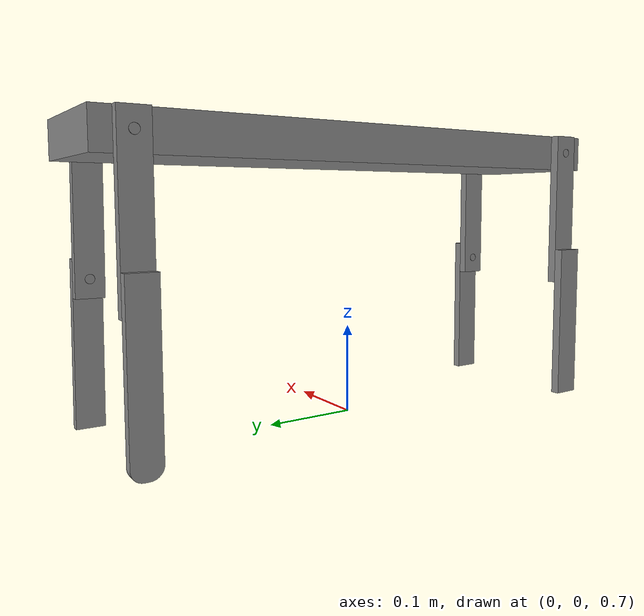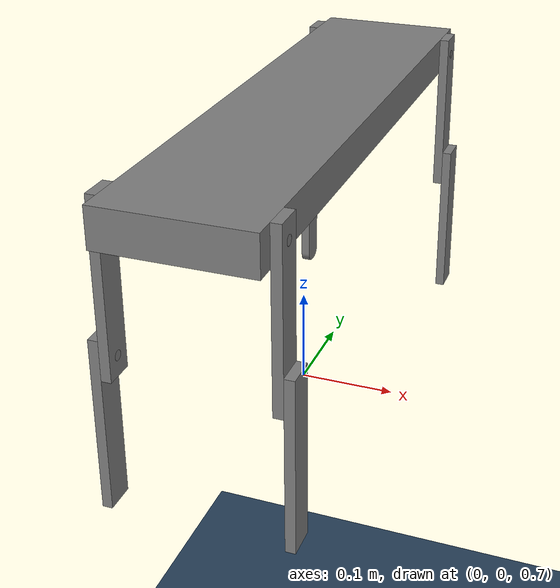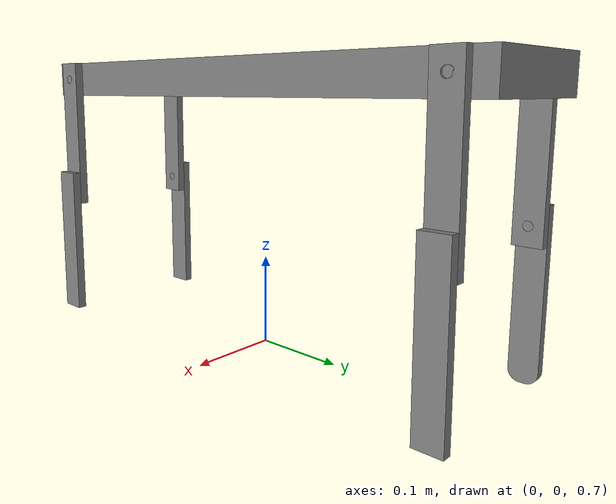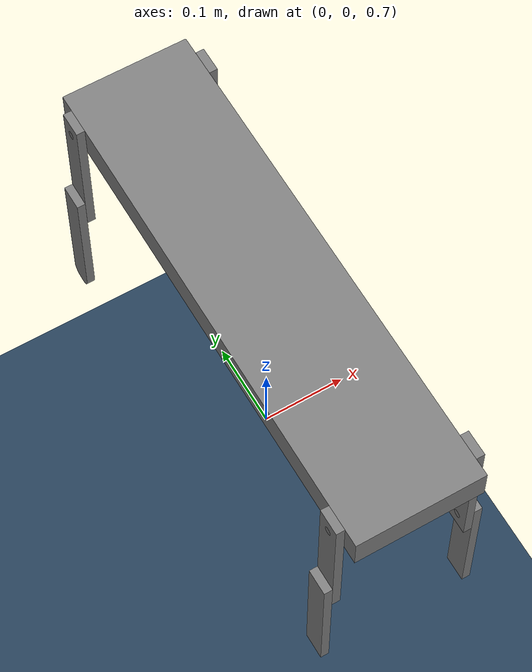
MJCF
<!-- Notes: -->
<!-- FR = Front Right, FL = Front Left, BR = Back Right, BL = Back Left -->

<mujoco model="Quadroped">
    <compiler angle="radian" />
    <asset>
        <!-- CAD Files -->
        <mesh name="Body-v1" file="meshes/Body-v1.stl" scale="0.001 0.001 0.001" />
        <mesh name="Lower-leg-1" file="meshes/Lower-leg-1.stl" scale="0.001 0.001 0.001" />
        <mesh name="Upper-leg-1" file="meshes/Upper-leg-1.stl" scale="0.001 0.001 0.001" />
        <mesh name="Upper-leg-2" file="meshes/Upper-leg-2.stl" scale="0.001 0.001 0.001" />
        <mesh name="Lower-leg-2" file="meshes/Lower-leg-2.stl" scale="0.001 0.001 0.001" />
        <mesh name="Upper-leg-3" file="meshes/Upper-leg-3.stl" scale="0.001 0.001 0.001" />
        <mesh name="Lower-leg-3" file="meshes/Lower-leg-3.stl" scale="0.001 0.001 0.001" />
        <mesh name="Upper-leg-4" file="meshes/Upper-leg-4.stl" scale="0.001 0.001 0.001" />
        <mesh name="Lower-leg-4" file="meshes/Lower-leg-4.stl" scale="0.001 0.001 0.001" />

        <!-- World Files -->
        <texture type="skybox" builtin="gradient" rgb1=".3 .5 .7" rgb2="0 0 0" width="32" height="512"/>
        <texture name="grid" type="2d" builtin="checker" width="512" height="512" rgb1=".1 .2 .3" rgb2=".2 .3 .4"/>
        <material name="grid" texture="grid" texrepeat="1 1" texuniform="true" reflectance=".2"/>
    </asset>

    <worldbody>
        <!-- World Plane -->
        <geom name="floor" size="0 0 .05" type="plane" material="grid"/>
        <light name="spotlight" mode="targetbodycom" target="Body-v1" diffuse=".8 .8 .8" specular="0.3 0.3 0.3" pos="0 -6 4" cutoff="30"/>
        <light name="top" pos="0 0 2" mode="trackcom"/>

        <!-- Wrapper to rotate the robot to the right axis -->
        <body name="wrapper" pos="0 0 0" euler="1.57 0 0">
            <!-- Enables Gravity for the Body -->
            <joint type = "free"/>

            <!-- Lighting -->
            <light directional="true" pos="-0.5 0.5 3" dir="0 0 -1" />

                <!-- Parent Body for Robot -->
                <body name="Body-v1" pos="0 1 0">
                    <!-- Body -->
                    <geom name="Body-v1" type="mesh" mesh="Body-v1" size="0.5 0.5 0.5" />
                    <inertial mass="5" pos="0 0 0" fullinertia="0.1 0.1 0.1 0 0 0"/>

                    <!-- Front Right Leg -->
                    <body name="Upper-leg-4" pos="-0.07500000000000002 -0.06890000000000006 0.265" euler="-0.0 -1.5707963267948963 0">
                        <joint name="FR-Hip" type="hinge" axis="0.0 2.220446049250313e-16 -1.0" pos="0.0 0.06890000000000006 0.004999999999999992" />
                        <geom name="Upper-leg-4_geom" type="mesh" mesh="Upper-leg-4" pos="0 0 0" euler="0 0 0" />
                        <inertial mass="0.4063882488346593" pos="-1.5880630144238238e-14 9.658940314238862e-17 0.005" fullinertia="0.0010478475656508172 3.471342654052731e-05 0.0010757878547107726 -8.673617379884035e-19 -1.925929944387236e-34 2.0251590889358678e-19" />
                        <body name="Lower-leg-4" pos="0.0 -0.13779999999999998 0.02" euler="-3.141592653589793 0.0 -3.141592653589793">
                            <joint name="FR-Knee" type="hinge" axis="-2.719262146893782e-32 -2.220446049250313e-16 -1.0" pos="8.437816446125266e-18 0.06890000000000002 0.010000000000000035" />
                            <geom name="Lower-leg-4_geom" type="mesh" mesh="Lower-leg-4" pos="0 0 0" euler="0 0 0" />
                            <inertial mass="0.4248843755826693" pos="-2.2772772242371458e-14 0.0009997881825223242 0.005145107138247074" fullinertia="0.0011361051854464274 3.5590752875500065e-05 0.0011633993497458112 6.590601467234604e-16 -1.735236150243669e-18 -4.186303079975569e-06" />
                        </body>
                    </body>

                    <!-- Front Left Leg -->
                    <body name="Upper-leg-1" pos="0.08500000000000003 -0.06890000000000006 0.265" euler="-0.0 -1.5707963267948963 0">
                        <joint name="FL-Hip" type="hinge" axis="0.0 -2.220446049250313e-16 -1.0" pos="0.0 0.06890000000000006 0.010000000000000021" />
                        <geom name="Upper-leg-1_geom" type="mesh" mesh="Upper-leg-1" pos="0 0 0" euler="0 0 0" />
                        <inertial mass="0.4063882488346593" pos="-1.5880630144238238e-14 9.880984919163893e-17 0.005" fullinertia="0.0010478475656508172 3.471342654052731e-05 0.0010757878547107726 -8.67361737988404e-19 -1.7347234759768069e-18 6.648458290948168e-19" />
                        <body name="Lower-leg-1" pos="0.0 -0.13780000000000034 -0.010000000000000125" euler="-0.0 0.0 -0.0">
                            <joint name="FL-Knee" type="hinge" axis="0.0 -2.2204460492503254e-16 -1.0000000000000056" pos="0.0 0.06890000000000077 0.020000000000000295" />
                            <geom name="Lower-leg-1_geom" type="mesh" mesh="Lower-leg-1" pos="0 0 0" euler="0 0 0" />
                            <inertial mass="0.4248843755826693" pos="-2.2737367544323207e-14 0.0009997881825222943 0.005145107138247155" fullinertia="0.001136105185446424 3.559075287549352e-05 0.0011633993497458311 6.522560269672831e-16 -1.7347234759769616e-18 -4.186303079975615e-06" />
                        </body>
                    </body>

                    <!-- Back Right Leg -->
                    <body name="Upper-leg-3" pos="-0.08499999999999998 -0.06890000000000006 -0.265" euler="-1.2246467991473532e-16 1.5707963267948963 0">
                        <joint name="BR-Hip" type="hinge" axis="-2.719262146893782e-32 -2.220446049250313e-16 -1.0" pos="8.43781644612527e-18 0.06890000000000006 0.009999999999999966" />
                        <geom name="Upper-leg-3_geom" type="mesh" mesh="Upper-leg-3" pos="0 0 0" euler="0 0 0" />
                        <inertial mass="0.4063882488346593" pos="-1.5880630144238238e-14 9.880984919164088e-17 0.005" fullinertia="0.0010478475656508172 3.471342654052731e-05 0.0010757878547107726 -9.91434886045236e-19 2.7401312609146714e-34 6.648458290948168e-19" />
                        <body name="Lower-leg-3" pos="-3.552713678800501e-17 -0.13779999999999998 -0.01" euler="-0.0 0.0 -0.0">
                            <joint name="BR-Knee" type="hinge" axis="2.719262146893782e-32 2.220446049250313e-16 1.0" pos="8.437816446125266e-18 0.06890000000000002 0.009999999999999993" />
                            <geom name="Lower-leg-3_geom" type="mesh" mesh="Lower-leg-3" pos="0 0 0" euler="0 0 0" />
                            <inertial mass="0.4248843755826693" pos="-2.2737245105583453e-14 0.0009997881825223242 0.005145107138247091" fullinertia="0.0011361051854464274 3.559075287547925e-05 0.0011633993497458042 6.555906997715068e-16 -1.735236150243668e-18 -4.186303079977304e-06" />
                        </body>
                    </body>

                    <!-- Back Left Leg -->
                    <body name="Upper-leg-2" pos="0.07500000000000007 -0.06889680384218429 -0.26433635828063684" euler="0.009632104227912582 1.5707963267948963 0">
                        <joint name="BL-Hip" type="hinge" axis="-2.138723706643446e-18 2.2203430464056605e-16 -1.0" pos="1.3042952135000618e-16 0.06890000000000059 -5.40907754493371e-17" />
                        <geom name="Upper-leg-2_geom" type="mesh" mesh="Upper-leg-2" pos="0 0 0" euler="0 0 0" />
                        <inertial mass="0.4063882488346593" pos="-1.5882192595877925e-14 8.572535798946927e-17 0.005000000000000009" fullinertia="0.0010478475656508083 3.4713426540532954e-05 0.0010757878547107795 8.876905287225068e-19 -3.4692262534502614e-18 -2.6457179465415943e-19" />
                        <body name="Lower-leg-2" pos="-7.105427357601002e-17 -0.13780000000000023 0.019999999999999966" euler="3.141592653589793 0.0 -3.141592653589793">
                            <joint name="BL-Knee" type="hinge" axis="-2.1387237066435082e-18 -4.718344851812275e-16 -1.0000000000000013" pos="-2.872043445458069e-07 0.06889961043263586 0.010000000000000045" />
                            <geom name="Lower-leg-2_geom" type="mesh" mesh="Lower-leg-2" pos="0 0 0" euler="0 0 0" />
                            <inertial mass="0.4248843755826693" pos="-2.2722853126552235e-14 0.00099978818252233 0.00514510713824708" fullinertia="0.001136105185446433 3.5590752875494664e-05 0.001163399349745842 6.511514960040599e-16 -4.959809252907669e-18 -4.186303079976195e-06" />
                        </body>
                    </body>

                    <!-- End of Parent Body -->
                 </body>

            <!-- End of Wrapper Body -->
        </body>

        <!-- End of WorldBody -->
    </worldbody>

    <!-- File Definition End -->
</mujoco>
